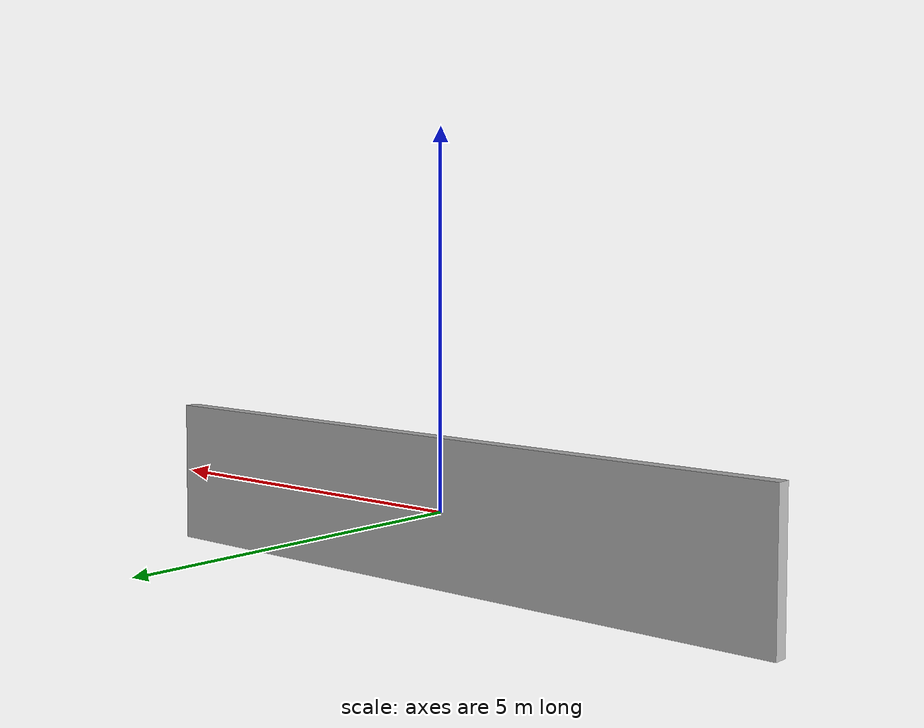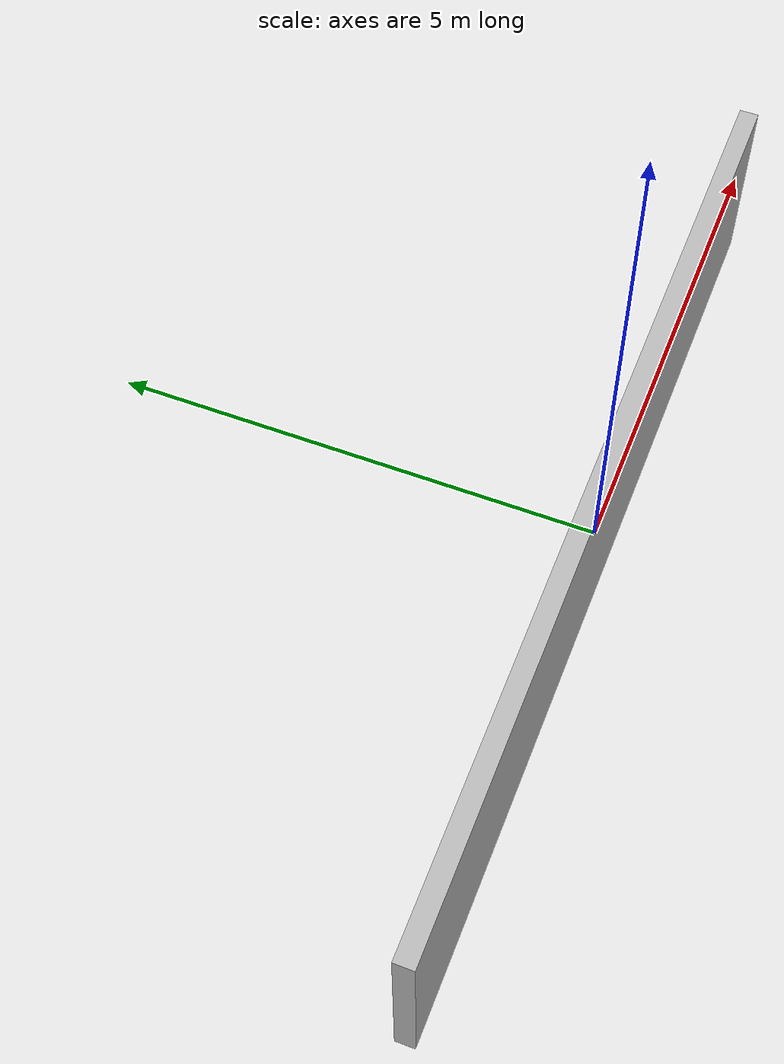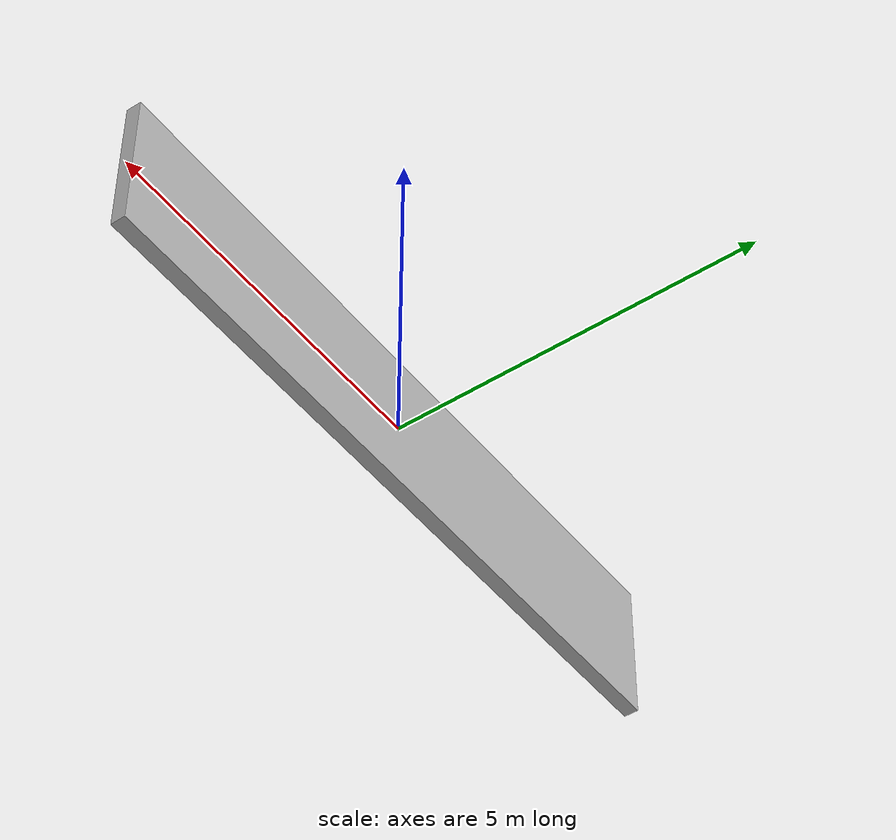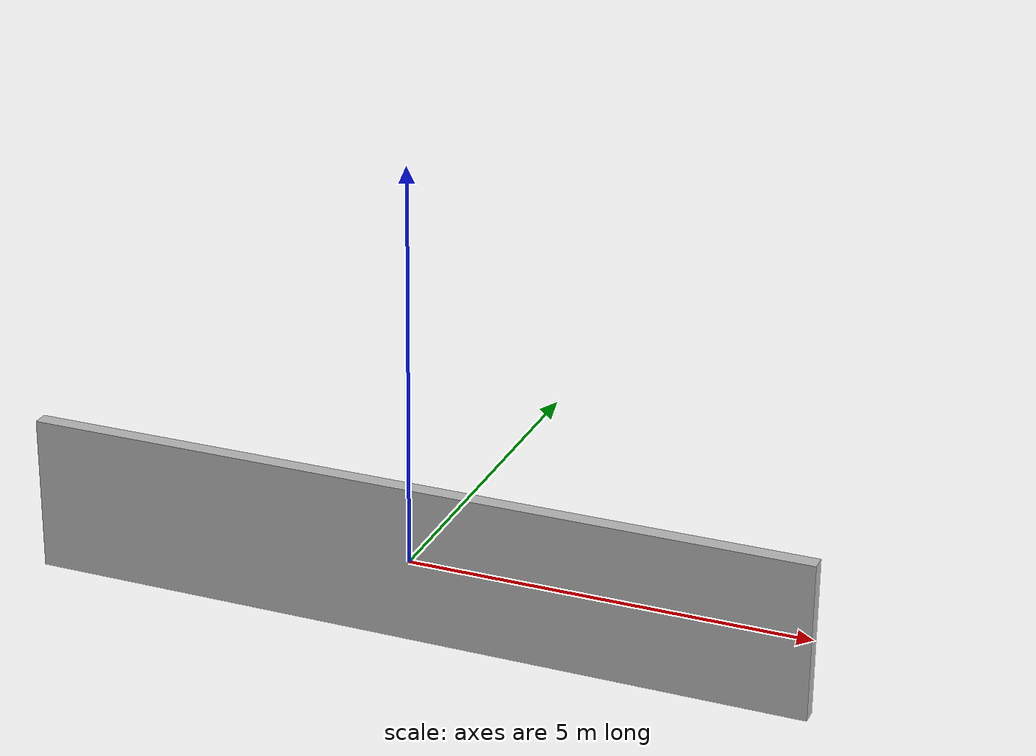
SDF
<?xml version="1.0" ?>

<sdf version="1.6">

  <model name="wall">

    <static>true</static>

    <link name="link">

      <collision name="collision">
        <geometry>
          <box>
            <size>10 0.2 2</size>
          </box>
        </geometry>
      </collision>

      <visual name="visual">
        <geometry>
          <box>
            <size>10 0.2 2</size>
          </box>
        </geometry>
      </visual>

    </link>

  </model>

</sdf>
